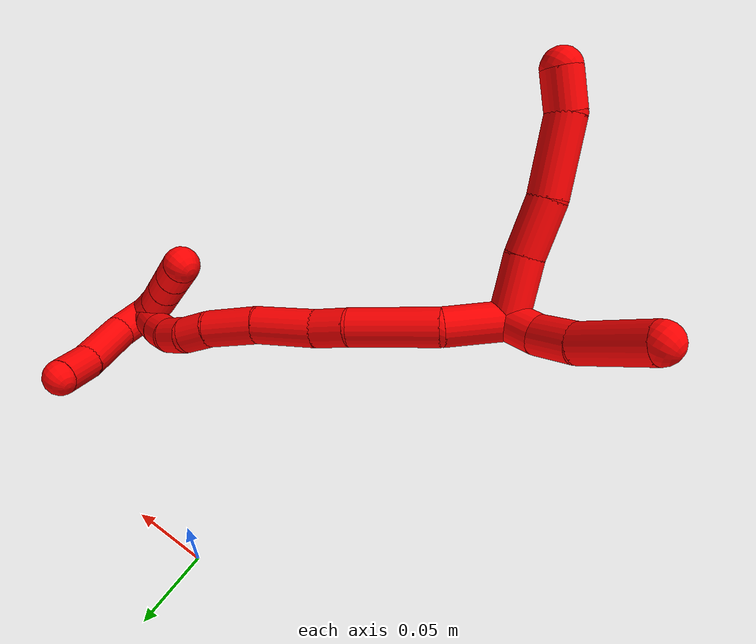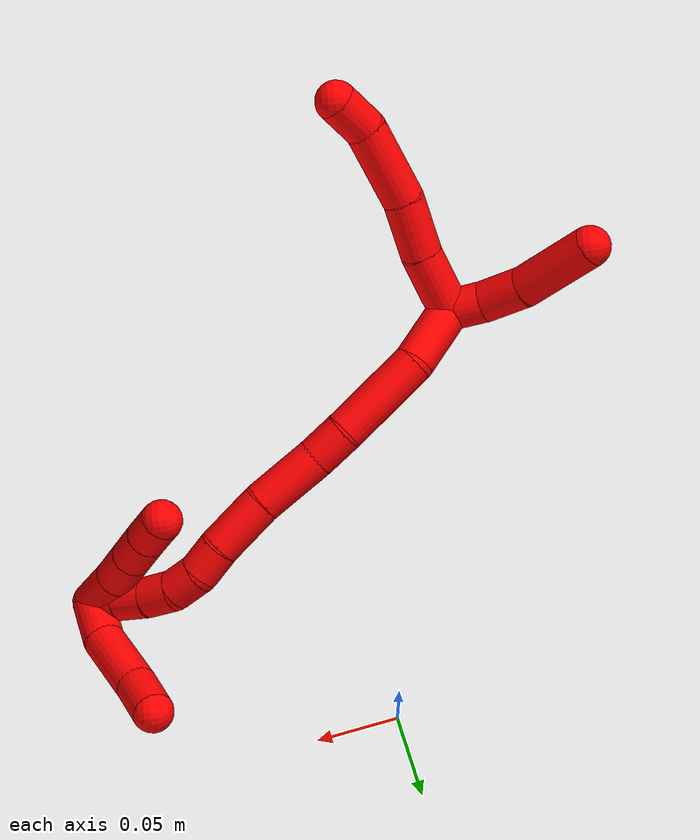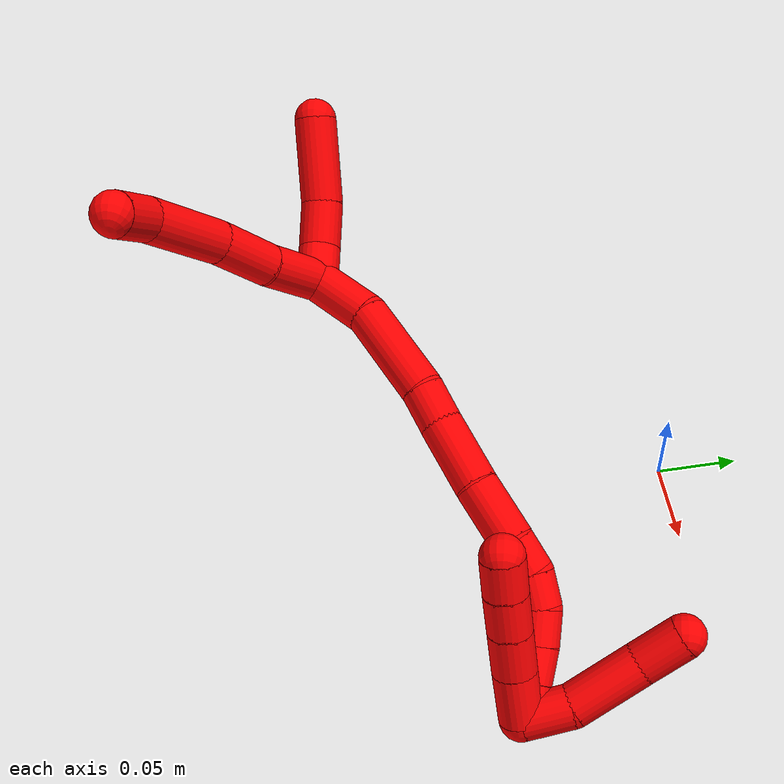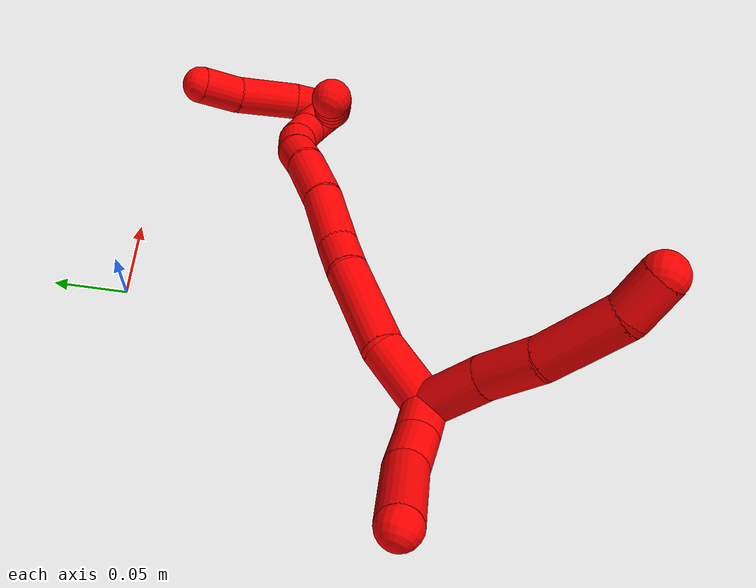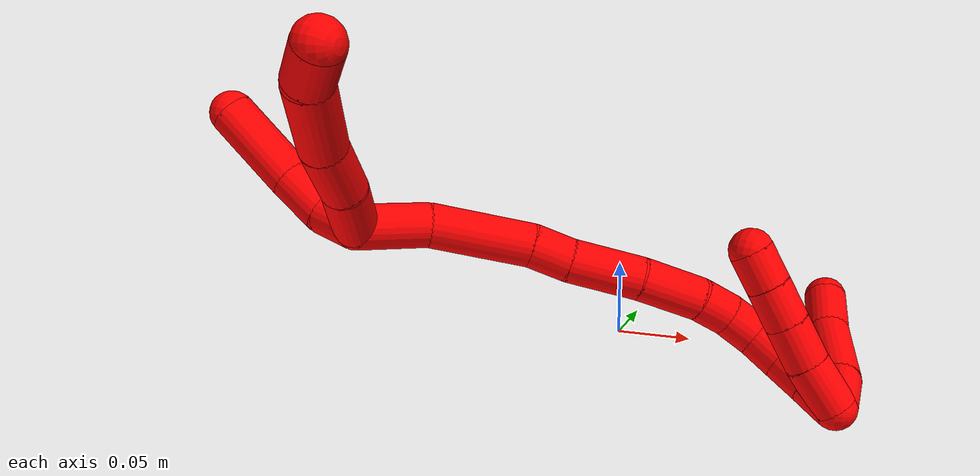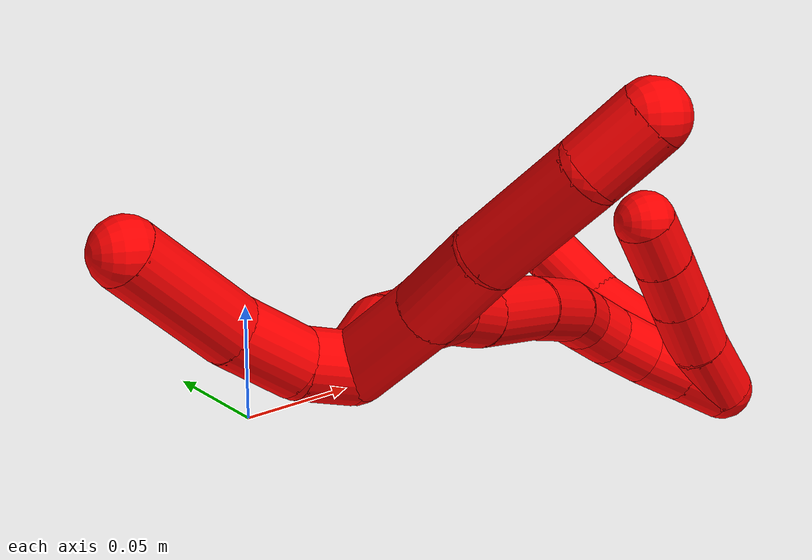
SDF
<sdf version="1.7">
 <world name="default">
  <model name="photoneo_s_sensor">
   <static>1</static>
   <pose>0 0 2 1.57079 1.57079 3.14159</pose>
   <link name="link">
    <inertial><mass>0.1</mass></inertial>
    <sensor name="sensor" type="depth">
     <update_rate>30</update_rate>
     <camera>
      <horizontal_fov>1.22</horizontal_fov>
      <image><width>1920</width><height>1200</height><format>B8G8R8</format></image>
      <clip><near>0.1</near><far>4</far></clip>
      <depth_camera><output>points</output></depth_camera>
     </camera>
     <plugin name="camera_plugin" filename="libgazebo_ros_depth_camera.so">
      <baseline>0.2</baseline>
      <alwaysOn>1</alwaysOn>
      <updateRate>0.0</updateRate>
      <cameraName>camera_ir</cameraName>
      <imageTopicName>/camera/color/image_raw</imageTopicName>
      <cameraInfoTopicName>/camera/color/camera_info</cameraInfoTopicName>
      <depthImageTopicName>/camera/depth/image_raw</depthImageTopicName>
      <depthImageCameraInfoTopicName>/camera/depth/camera_info</depthImageCameraInfoTopicName>
      <pointCloudTopicName>/camera/depth/points</pointCloudTopicName>
      <frameName>fr_optical</frameName>
      <pointCloudCutoff>0.1</pointCloudCutoff>
      <pointCloudCutoffMax>2.0</pointCloudCutoffMax>
      <distortionK1>0</distortionK1>
      <distortionK2>0</distortionK2>
      <distortionK3>0</distortionK3>
      <distortionT1>0</distortionT1>
      <distortionT2>0</distortionT2>
      <CxPrime>0</CxPrime>
      <Cx>0</Cx>
      <Cy>0</Cy>
      <focalLength>0</focalLength>
      <hackBaseline>0</hackBaseline>
     </plugin>
    </sensor>
   </link>
  </model>
  <model name="2">
   <static>0</static>
   <link name="2">
    <collision name="collision-cylinder-e_1_2_8">
     <pose>-0.013141 -0.013284 -0.006412 2.02049 -0.72775 -1.09066</pose>
     <geometry><cylinder><radius>0.0125</radius><length>0.039511</length></cylinder></geometry>
     <surface>
      <friction><ode><mu>1.16</mu><mu2>1.16</mu2><slip1>0</slip1><slip2>0</slip2></ode></friction>
      <contact><ode><kp>1e+06</kp><kd>1</kd><max_vel>0</max_vel><min_depth>0.001</min_depth></ode></contact>
     </surface>
    </collision>
    <visual name="visual-cylinder-e_1_2_8">
     <pose>-0.013141 -0.013284 -0.006412 2.02049 -0.72775 -1.09066</pose>
     <geometry><cylinder><radius>0.0125</radius><length>0.039511</length></cylinder></geometry>
     <material><ambient>1 0 0 1</ambient></material>
    </visual>
    <collision name="collision-cylinder-e_2_8_9">
     <pose>-0.038679 -0.038879 -0.016272 1.84388 -0.770012 -0.981454</pose>
     <geometry><cylinder><radius>0.0125</radius><length>0.035615</length></cylinder></geometry>
     <surface>
      <friction><ode><mu>1.16</mu><mu2>1.16</mu2><slip1>0</slip1><slip2>0</slip2></ode></friction>
      <contact><ode><kp>1e+06</kp><kd>1</kd><max_vel>0</max_vel><min_depth>0.001</min_depth></ode></contact>
     </surface>
    </collision>
    <visual name="visual-cylinder-e_2_8_9">
     <pose>-0.038679 -0.038879 -0.016272 1.84388 -0.770012 -0.981454</pose>
     <geometry><cylinder><radius>0.0125</radius><length>0.035615</length></cylinder></geometry>
     <material><ambient>1 0 0 1</ambient></material>
    </visual>
    <collision name="collision-cylinder-e_3_9_10">
     <pose>-0.066624 -0.068234 -0.028251 2.03488 -0.684269 -1.04596</pose>
     <geometry><cylinder><radius>0.0125</radius><length>0.049194</length></cylinder></geometry>
     <surface>
      <friction><ode><mu>1.16</mu><mu2>1.16</mu2><slip1>0</slip1><slip2>0</slip2></ode></friction>
      <contact><ode><kp>1e+06</kp><kd>1</kd><max_vel>0</max_vel><min_depth>0.001</min_depth></ode></contact>
     </surface>
    </collision>
    <visual name="visual-cylinder-e_3_9_10">
     <pose>-0.066624 -0.068234 -0.028251 2.03488 -0.684269 -1.04596</pose>
     <geometry><cylinder><radius>0.0125</radius><length>0.049194</length></cylinder></geometry>
     <material><ambient>1 0 0 1</ambient></material>
    </visual>
    <collision name="collision-cylinder-e_4_10_6">
     <pose>-0.087228 -0.09455 -0.044083 2.23778 -0.40478 -0.7999</pose>
     <geometry><cylinder><radius>0.0125</radius><length>0.025679</length></cylinder></geometry>
     <surface>
      <friction><ode><mu>1.16</mu><mu2>1.16</mu2><slip1>0</slip1><slip2>0</slip2></ode></friction>
      <contact><ode><kp>1e+06</kp><kd>1</kd><max_vel>0</max_vel><min_depth>0.001</min_depth></ode></contact>
     </surface>
    </collision>
    <visual name="visual-cylinder-e_4_10_6">
     <pose>-0.087228 -0.09455 -0.044083 2.23778 -0.40478 -0.7999</pose>
     <geometry><cylinder><radius>0.0125</radius><length>0.025679</length></cylinder></geometry>
     <material><ambient>1 0 0 1</ambient></material>
    </visual>
    <collision name="collision-cylinder-e_1_2_11">
     <pose>-0.000579 -0.002019 0.010553 0.189001 -0.053813 -0.005102</pose>
     <geometry><cylinder><radius>0.0125</radius><length>0.021521</length></cylinder></geometry>
     <surface>
      <friction><ode><mu>1.16</mu><mu2>1.16</mu2><slip1>0</slip1><slip2>0</slip2></ode></friction>
      <contact><ode><kp>1e+06</kp><kd>1</kd><max_vel>0</max_vel><min_depth>0.001</min_depth></ode></contact>
     </surface>
    </collision>
    <visual name="visual-cylinder-e_1_2_11">
     <pose>-0.000579 -0.002019 0.010553 0.189001 -0.053813 -0.005102</pose>
     <geometry><cylinder><radius>0.0125</radius><length>0.021521</length></cylinder></geometry>
     <material><ambient>1 0 0 1</ambient></material>
    </visual>
    <collision name="collision-cylinder-e_2_11_12">
     <pose>-0.001593 -0.010859 0.033353 0.508199 -0.03108 -0.008072</pose>
     <geometry><cylinder><radius>0.0125</radius><length>0.02805</length></cylinder></geometry>
     <surface>
      <friction><ode><mu>1.16</mu><mu2>1.16</mu2><slip1>0</slip1><slip2>0</slip2></ode></friction>
      <contact><ode><kp>1e+06</kp><kd>1</kd><max_vel>0</max_vel><min_depth>0.001</min_depth></ode></contact>
     </surface>
    </collision>
    <visual name="visual-cylinder-e_2_11_12">
     <pose>-0.001593 -0.010859 0.033353 0.508199 -0.03108 -0.008072</pose>
     <geometry><cylinder><radius>0.0125</radius><length>0.02805</length></cylinder></geometry>
     <material><ambient>1 0 0 1</ambient></material>
    </visual>
    <collision name="collision-cylinder-e_3_12_5">
     <pose>-0.005837 -0.032827 0.065395 0.653145 -0.15161 -0.051437</pose>
     <geometry><cylinder><radius>0.0125</radius><length>0.050429</length></cylinder></geometry>
     <surface>
      <friction><ode><mu>1.16</mu><mu2>1.16</mu2><slip1>0</slip1><slip2>0</slip2></ode></friction>
      <contact><ode><kp>1e+06</kp><kd>1</kd><max_vel>0</max_vel><min_depth>0.001</min_depth></ode></contact>
     </surface>
    </collision>
    <visual name="visual-cylinder-e_3_12_5">
     <pose>-0.005837 -0.032827 0.065395 0.653145 -0.15161 -0.051437</pose>
     <geometry><cylinder><radius>0.0125</radius><length>0.050429</length></cylinder></geometry>
     <material><ambient>1 0 0 1</ambient></material>
    </visual>
    <collision name="collision-cylinder-e_1_2_13">
     <pose>0.016083 -0.000932 -0.012033 3.06431 0.92702 2.98721</pose>
     <geometry><cylinder><radius>0.0125</radius><length>0.040216</length></cylinder></geometry>
     <surface>
      <friction><ode><mu>1.16</mu><mu2>1.16</mu2><slip1>0</slip1><slip2>0</slip2></ode></friction>
      <contact><ode><kp>1e+06</kp><kd>1</kd><max_vel>0</max_vel><min_depth>0.001</min_depth></ode></contact>
     </surface>
    </collision>
    <visual name="visual-cylinder-e_1_2_13">
     <pose>0.016083 -0.000932 -0.012033 3.06431 0.92702 2.98721</pose>
     <geometry><cylinder><radius>0.0125</radius><length>0.040216</length></cylinder></geometry>
     <material><ambient>1 0 0 1</ambient></material>
    </visual>
    <collision name="collision-cylinder-e_2_13_14">
     <pose>0.050139 0.001669 -0.046563 -2.98583 0.668145 -2.69925</pose>
     <geometry><cylinder><radius>0.0125</radius><length>0.05802</length></cylinder></geometry>
     <surface>
      <friction><ode><mu>1.16</mu><mu2>1.16</mu2><slip1>0</slip1><slip2>0</slip2></ode></friction>
      <contact><ode><kp>1e+06</kp><kd>1</kd><max_vel>0</max_vel><min_depth>0.001</min_depth></ode></contact>
     </surface>
    </collision>
    <visual name="visual-cylinder-e_2_13_14">
     <pose>0.050139 0.001669 -0.046563 -2.98583 0.668145 -2.69925</pose>
     <geometry><cylinder><radius>0.0125</radius><length>0.05802</length></cylinder></geometry>
     <material><ambient>1 0 0 1</ambient></material>
    </visual>
    <collision name="collision-cylinder-e_3_14_15">
     <pose>0.074288 0.008477 -0.078365 -2.80317 0.559337 -2.0683</pose>
     <geometry><cylinder><radius>0.0125</radius><length>0.023278</length></cylinder></geometry>
     <surface>
      <friction><ode><mu>1.16</mu><mu2>1.16</mu2><slip1>0</slip1><slip2>0</slip2></ode></friction>
      <contact><ode><kp>1e+06</kp><kd>1</kd><max_vel>0</max_vel><min_depth>0.001</min_depth></ode></contact>
     </surface>
    </collision>
    <visual name="visual-cylinder-e_3_14_15">
     <pose>0.074288 0.008477 -0.078365 -2.80317 0.559337 -2.0683</pose>
     <geometry><cylinder><radius>0.0125</radius><length>0.023278</length></cylinder></geometry>
     <material><ambient>1 0 0 1</ambient></material>
    </visual>
    <collision name="collision-cylinder-e_4_15_16">
     <pose>0.091608 0.014968 -0.104937 -2.9575 0.565448 -2.52627</pose>
     <geometry><cylinder><radius>0.0125</radius><length>0.0416</length></cylinder></geometry>
     <surface>
      <friction><ode><mu>1.16</mu><mu2>1.16</mu2><slip1>0</slip1><slip2>0</slip2></ode></friction>
      <contact><ode><kp>1e+06</kp><kd>1</kd><max_vel>0</max_vel><min_depth>0.001</min_depth></ode></contact>
     </surface>
    </collision>
    <visual name="visual-cylinder-e_4_15_16">
     <pose>0.091608 0.014968 -0.104937 -2.9575 0.565448 -2.52627</pose>
     <geometry><cylinder><radius>0.0125</radius><length>0.0416</length></cylinder></geometry>
     <material><ambient>1 0 0 1</ambient></material>
    </visual>
    <collision name="collision-cylinder-e_5_16_17">
     <pose>0.113522 0.022799 -0.13614 -2.82174 0.632834 -2.22609</pose>
     <geometry><cylinder><radius>0.0125</radius><length>0.036418</length></cylinder></geometry>
     <surface>
      <friction><ode><mu>1.16</mu><mu2>1.16</mu2><slip1>0</slip1><slip2>0</slip2></ode></friction>
      <contact><ode><kp>1e+06</kp><kd>1</kd><max_vel>0</max_vel><min_depth>0.001</min_depth></ode></contact>
     </surface>
    </collision>
    <visual name="visual-cylinder-e_5_16_17">
     <pose>0.113522 0.022799 -0.13614 -2.82174 0.632834 -2.22609</pose>
     <geometry><cylinder><radius>0.0125</radius><length>0.036418</length></cylinder></geometry>
     <material><ambient>1 0 0 1</ambient></material>
    </visual>
    <collision name="collision-cylinder-e_6_17_18">
     <pose>0.130322 0.03162 -0.15716 -2.60577 0.632061 -1.74485</pose>
     <geometry><cylinder><radius>0.0125</radius><length>0.020414</length></cylinder></geometry>
     <surface>
      <friction><ode><mu>1.16</mu><mu2>1.16</mu2><slip1>0</slip1><slip2>0</slip2></ode></friction>
      <contact><ode><kp>1e+06</kp><kd>1</kd><max_vel>0</max_vel><min_depth>0.001</min_depth></ode></contact>
     </surface>
    </collision>
    <visual name="visual-cylinder-e_6_17_18">
     <pose>0.130322 0.03162 -0.15716 -2.60577 0.632061 -1.74485</pose>
     <geometry><cylinder><radius>0.0125</radius><length>0.020414</length></cylinder></geometry>
     <material><ambient>1 0 0 1</ambient></material>
    </visual>
    <collision name="collision-cylinder-e_7_18_19">
     <pose>0.139364 0.040712 -0.172438 -2.60396 0.305707 -1.01977</pose>
     <geometry><cylinder><radius>0.0125</radius><length>0.020016</length></cylinder></geometry>
     <surface>
      <friction><ode><mu>1.16</mu><mu2>1.16</mu2><slip1>0</slip1><slip2>0</slip2></ode></friction>
      <contact><ode><kp>1e+06</kp><kd>1</kd><max_vel>0</max_vel><min_depth>0.001</min_depth></ode></contact>
     </surface>
    </collision>
    <visual name="visual-cylinder-e_7_18_19">
     <pose>0.139364 0.040712 -0.172438 -2.60396 0.305707 -1.01977</pose>
     <geometry><cylinder><radius>0.0125</radius><length>0.020016</length></cylinder></geometry>
     <material><ambient>1 0 0 1</ambient></material>
    </visual>
    <collision name="collision-cylinder-e_8_19_20">
     <pose>0.142185 0.050324 -0.189455 -2.64983 -0.019139 0.076228</pose>
     <geometry><cylinder><radius>0.0125</radius><length>0.020013</length></cylinder></geometry>
     <surface>
      <friction><ode><mu>1.16</mu><mu2>1.16</mu2><slip1>0</slip1><slip2>0</slip2></ode></friction>
      <contact><ode><kp>1e+06</kp><kd>1</kd><max_vel>0</max_vel><min_depth>0.001</min_depth></ode></contact>
     </surface>
    </collision>
    <visual name="visual-cylinder-e_8_19_20">
     <pose>0.142185 0.050324 -0.189455 -2.64983 -0.019139 0.076228</pose>
     <geometry><cylinder><radius>0.0125</radius><length>0.020013</length></cylinder></geometry>
     <material><ambient>1 0 0 1</ambient></material>
    </visual>
    <collision name="collision-cylinder-e_9_20_21">
     <pose>0.14064 0.059196 -0.20728 -2.70996 -0.135662 0.600987</pose>
     <geometry><cylinder><radius>0.0125</radius><length>0.020015</length></cylinder></geometry>
     <surface>
      <friction><ode><mu>1.16</mu><mu2>1.16</mu2><slip1>0</slip1><slip2>0</slip2></ode></friction>
      <contact><ode><kp>1e+06</kp><kd>1</kd><max_vel>0</max_vel><min_depth>0.001</min_depth></ode></contact>
     </surface>
    </collision>
    <visual name="visual-cylinder-e_9_20_21">
     <pose>0.14064 0.059196 -0.20728 -2.70996 -0.135662 0.600987</pose>
     <geometry><cylinder><radius>0.0125</radius><length>0.020015</length></cylinder></geometry>
     <material><ambient>1 0 0 1</ambient></material>
    </visual>
    <collision name="collision-cylinder-e_10_21_1">
     <pose>0.137666 0.067528 -0.225229 -2.70405 -0.162655 0.702786</pose>
     <geometry><cylinder><radius>0.0125</radius><length>0.02001</length></cylinder></geometry>
     <surface>
      <friction><ode><mu>1.16</mu><mu2>1.16</mu2><slip1>0</slip1><slip2>0</slip2></ode></friction>
      <contact><ode><kp>1e+06</kp><kd>1</kd><max_vel>0</max_vel><min_depth>0.001</min_depth></ode></contact>
     </surface>
    </collision>
    <visual name="visual-cylinder-e_10_21_1">
     <pose>0.137666 0.067528 -0.225229 -2.70405 -0.162655 0.702786</pose>
     <geometry><cylinder><radius>0.0125</radius><length>0.02001</length></cylinder></geometry>
     <material><ambient>1 0 0 1</ambient></material>
    </visual>
    <collision name="collision-cylinder-e_1_1_22">
     <pose>0.132906 0.060415 -0.225205 0.899857 -0.214415 -0.10386</pose>
     <geometry><cylinder><radius>0.0125</radius><length>0.02952</length></cylinder></geometry>
     <surface>
      <friction><ode><mu>1.16</mu><mu2>1.16</mu2><slip1>0</slip1><slip2>0</slip2></ode></friction>
      <contact><ode><kp>1e+06</kp><kd>1</kd><max_vel>0</max_vel><min_depth>0.001</min_depth></ode></contact>
     </surface>
    </collision>
    <visual name="visual-cylinder-e_1_1_22">
     <pose>0.132906 0.060415 -0.225205 0.899857 -0.214415 -0.10386</pose>
     <geometry><cylinder><radius>0.0125</radius><length>0.02952</length></cylinder></geometry>
     <material><ambient>1 0 0 1</ambient></material>
    </visual>
    <collision name="collision-cylinder-e_2_22_23">
     <pose>0.127336 0.03857 -0.209487 1.00148 -0.19154 -0.105047</pose>
     <geometry><cylinder><radius>0.0125</radius><length>0.025516</length></cylinder></geometry>
     <surface>
      <friction><ode><mu>1.16</mu><mu2>1.16</mu2><slip1>0</slip1><slip2>0</slip2></ode></friction>
      <contact><ode><kp>1e+06</kp><kd>1</kd><max_vel>0</max_vel><min_depth>0.001</min_depth></ode></contact>
     </surface>
    </collision>
    <visual name="visual-cylinder-e_2_22_23">
     <pose>0.127336 0.03857 -0.209487 1.00148 -0.19154 -0.105047</pose>
     <geometry><cylinder><radius>0.0125</radius><length>0.025516</length></cylinder></geometry>
     <material><ambient>1 0 0 1</ambient></material>
    </visual>
    <collision name="collision-cylinder-e_3_23_24">
     <pose>0.122725 0.01842 -0.196565 0.99951 -0.188976 -0.103394</pose>
     <geometry><cylinder><radius>0.0125</radius><length>0.023238</length></cylinder></geometry>
     <surface>
      <friction><ode><mu>1.16</mu><mu2>1.16</mu2><slip1>0</slip1><slip2>0</slip2></ode></friction>
      <contact><ode><kp>1e+06</kp><kd>1</kd><max_vel>0</max_vel><min_depth>0.001</min_depth></ode></contact>
     </surface>
    </collision>
    <visual name="visual-cylinder-e_3_23_24">
     <pose>0.122725 0.01842 -0.196565 0.99951 -0.188976 -0.103394</pose>
     <geometry><cylinder><radius>0.0125</radius><length>0.023238</length></cylinder></geometry>
     <material><ambient>1 0 0 1</ambient></material>
    </visual>
    <collision name="collision-cylinder-e_4_24_4">
     <pose>0.11871 -0.000124 -0.184508 0.988801 -0.16948 -0.091514</pose>
     <geometry><cylinder><radius>0.0125</radius><length>0.021726</length></cylinder></geometry>
     <surface>
      <friction><ode><mu>1.16</mu><mu2>1.16</mu2><slip1>0</slip1><slip2>0</slip2></ode></friction>
      <contact><ode><kp>1e+06</kp><kd>1</kd><max_vel>0</max_vel><min_depth>0.001</min_depth></ode></contact>
     </surface>
    </collision>
    <visual name="visual-cylinder-e_4_24_4">
     <pose>0.11871 -0.000124 -0.184508 0.988801 -0.16948 -0.091514</pose>
     <geometry><cylinder><radius>0.0125</radius><length>0.021726</length></cylinder></geometry>
     <material><ambient>1 0 0 1</ambient></material>
    </visual>
    <collision name="collision-cylinder-e_1_1_25">
     <pose>0.149377 0.068298 -0.230865 0.801109 1.22836 0.580342</pose>
     <geometry><cylinder><radius>0.0125</radius><length>0.028304</length></cylinder></geometry>
     <surface>
      <friction><ode><mu>1.16</mu><mu2>1.16</mu2><slip1>0</slip1><slip2>0</slip2></ode></friction>
      <contact><ode><kp>1e+06</kp><kd>1</kd><max_vel>0</max_vel><min_depth>0.001</min_depth></ode></contact>
     </surface>
    </collision>
    <visual name="visual-cylinder-e_1_1_25">
     <pose>0.149377 0.068298 -0.230865 0.801109 1.22836 0.580342</pose>
     <geometry><cylinder><radius>0.0125</radius><length>0.028304</length></cylinder></geometry>
     <material><ambient>1 0 0 1</ambient></material>
    </visual>
    <collision name="collision-cylinder-e_2_25_26">
     <pose>0.18004 0.056723 -0.217285 0.671443 0.922862 0.343578</pose>
     <geometry><cylinder><radius>0.0125</radius><length>0.043477</length></cylinder></geometry>
     <surface>
      <friction><ode><mu>1.16</mu><mu2>1.16</mu2><slip1>0</slip1><slip2>0</slip2></ode></friction>
      <contact><ode><kp>1e+06</kp><kd>1</kd><max_vel>0</max_vel><min_depth>0.001</min_depth></ode></contact>
     </surface>
    </collision>
    <visual name="visual-cylinder-e_2_25_26">
     <pose>0.18004 0.056723 -0.217285 0.671443 0.922862 0.343578</pose>
     <geometry><cylinder><radius>0.0125</radius><length>0.043477</length></cylinder></geometry>
     <material><ambient>1 0 0 1</ambient></material>
    </visual>
    <collision name="collision-cylinder-e_3_26_3">
     <pose>0.208097 0.041279 -0.201443 0.917782 0.863413 0.447597</pose>
     <geometry><cylinder><radius>0.0125</radius><length>0.028219</length></cylinder></geometry>
     <surface>
      <friction><ode><mu>1.16</mu><mu2>1.16</mu2><slip1>0</slip1><slip2>0</slip2></ode></friction>
      <contact><ode><kp>1e+06</kp><kd>1</kd><max_vel>0</max_vel><min_depth>0.001</min_depth></ode></contact>
     </surface>
    </collision>
    <visual name="visual-cylinder-e_3_26_3">
     <pose>0.208097 0.041279 -0.201443 0.917782 0.863413 0.447597</pose>
     <geometry><cylinder><radius>0.0125</radius><length>0.028219</length></cylinder></geometry>
     <material><ambient>1 0 0 1</ambient></material>
    </visual>
    <collision name="collision-sphere-3">
     <pose>0.218821 0.033996 -0.195872 0 -0 0</pose>
     <geometry><sphere><radius>0.0125</radius></sphere></geometry>
     <surface>
      <friction><ode><mu>1.16</mu><mu2>1.16</mu2><slip1>0</slip1><slip2>0</slip2></ode></friction>
      <contact><ode><kp>1e+06</kp><kd>1</kd><max_vel>0</max_vel><min_depth>0.001</min_depth></ode></contact>
     </surface>
    </collision>
    <visual name="visual-sphere-3">
     <pose>0.218821 0.033996 -0.195872 0 -0 0</pose>
     <geometry><sphere><radius>0.0125</radius></sphere></geometry>
     <material><ambient>1 0 0 1</ambient></material>
    </visual>
    <collision name="collision-sphere-26">
     <pose>0.197373 0.048561 -0.207013 0 -0 0</pose>
     <geometry><sphere><radius>0.0125</radius></sphere></geometry>
     <surface>
      <friction><ode><mu>1.16</mu><mu2>1.16</mu2><slip1>0</slip1><slip2>0</slip2></ode></friction>
      <contact><ode><kp>1e+06</kp><kd>1</kd><max_vel>0</max_vel><min_depth>0.001</min_depth></ode></contact>
     </surface>
    </collision>
    <visual name="visual-sphere-26">
     <pose>0.197373 0.048561 -0.207013 0 -0 0</pose>
     <geometry><sphere><radius>0.0125</radius></sphere></geometry>
     <material><ambient>1 0 0 1</ambient></material>
    </visual>
    <collision name="collision-sphere-25">
     <pose>0.162707 0.064886 -0.227558 0 -0 0</pose>
     <geometry><sphere><radius>0.0125</radius></sphere></geometry>
     <surface>
      <friction><ode><mu>1.16</mu><mu2>1.16</mu2><slip1>0</slip1><slip2>0</slip2></ode></friction>
      <contact><ode><kp>1e+06</kp><kd>1</kd><max_vel>0</max_vel><min_depth>0.001</min_depth></ode></contact>
     </surface>
    </collision>
    <visual name="visual-sphere-25">
     <pose>0.162707 0.064886 -0.227558 0 -0 0</pose>
     <geometry><sphere><radius>0.0125</radius></sphere></geometry>
     <material><ambient>1 0 0 1</ambient></material>
    </visual>
    <collision name="collision-sphere-4">
     <pose>0.116878 -0.009068 -0.178623 0 -0 0</pose>
     <geometry><sphere><radius>0.0125</radius></sphere></geometry>
     <surface>
      <friction><ode><mu>1.16</mu><mu2>1.16</mu2><slip1>0</slip1><slip2>0</slip2></ode></friction>
      <contact><ode><kp>1e+06</kp><kd>1</kd><max_vel>0</max_vel><min_depth>0.001</min_depth></ode></contact>
     </surface>
    </collision>
    <visual name="visual-sphere-4">
     <pose>0.116878 -0.009068 -0.178623 0 -0 0</pose>
     <geometry><sphere><radius>0.0125</radius></sphere></geometry>
     <material><ambient>1 0 0 1</ambient></material>
    </visual>
    <collision name="collision-sphere-24">
     <pose>0.120542 0.008821 -0.190394 0 -0 0</pose>
     <geometry><sphere><radius>0.0125</radius></sphere></geometry>
     <surface>
      <friction><ode><mu>1.16</mu><mu2>1.16</mu2><slip1>0</slip1><slip2>0</slip2></ode></friction>
      <contact><ode><kp>1e+06</kp><kd>1</kd><max_vel>0</max_vel><min_depth>0.001</min_depth></ode></contact>
     </surface>
    </collision>
    <visual name="visual-sphere-24">
     <pose>0.120542 0.008821 -0.190394 0 -0 0</pose>
     <geometry><sphere><radius>0.0125</radius></sphere></geometry>
     <material><ambient>1 0 0 1</ambient></material>
    </visual>
    <collision name="collision-sphere-23">
     <pose>0.124907 0.02802 -0.202735 0 -0 0</pose>
     <geometry><sphere><radius>0.0125</radius></sphere></geometry>
     <surface>
      <friction><ode><mu>1.16</mu><mu2>1.16</mu2><slip1>0</slip1><slip2>0</slip2></ode></friction>
      <contact><ode><kp>1e+06</kp><kd>1</kd><max_vel>0</max_vel><min_depth>0.001</min_depth></ode></contact>
     </surface>
    </collision>
    <visual name="visual-sphere-23">
     <pose>0.124907 0.02802 -0.202735 0 -0 0</pose>
     <geometry><sphere><radius>0.0125</radius></sphere></geometry>
     <material><ambient>1 0 0 1</ambient></material>
    </visual>
    <collision name="collision-sphere-22">
     <pose>0.129765 0.049119 -0.216238 0 -0 0</pose>
     <geometry><sphere><radius>0.0125</radius></sphere></geometry>
     <surface>
      <friction><ode><mu>1.16</mu><mu2>1.16</mu2><slip1>0</slip1><slip2>0</slip2></ode></friction>
      <contact><ode><kp>1e+06</kp><kd>1</kd><max_vel>0</max_vel><min_depth>0.001</min_depth></ode></contact>
     </surface>
    </collision>
    <visual name="visual-sphere-22">
     <pose>0.129765 0.049119 -0.216238 0 -0 0</pose>
     <geometry><sphere><radius>0.0125</radius></sphere></geometry>
     <material><ambient>1 0 0 1</ambient></material>
    </visual>
    <collision name="collision-sphere-1">
     <pose>0.136046 0.071711 -0.234171 0 -0 0</pose>
     <geometry><sphere><radius>0.0125</radius></sphere></geometry>
     <surface>
      <friction><ode><mu>1.16</mu><mu2>1.16</mu2><slip1>0</slip1><slip2>0</slip2></ode></friction>
      <contact><ode><kp>1e+06</kp><kd>1</kd><max_vel>0</max_vel><min_depth>0.001</min_depth></ode></contact>
     </surface>
    </collision>
    <visual name="visual-sphere-1">
     <pose>0.136046 0.071711 -0.234171 0 -0 0</pose>
     <geometry><sphere><radius>0.0125</radius></sphere></geometry>
     <material><ambient>1 0 0 1</ambient></material>
    </visual>
    <collision name="collision-sphere-21">
     <pose>0.139286 0.063344 -0.216286 0 -0 0</pose>
     <geometry><sphere><radius>0.0125</radius></sphere></geometry>
     <surface>
      <friction><ode><mu>1.16</mu><mu2>1.16</mu2><slip1>0</slip1><slip2>0</slip2></ode></friction>
      <contact><ode><kp>1e+06</kp><kd>1</kd><max_vel>0</max_vel><min_depth>0.001</min_depth></ode></contact>
     </surface>
    </collision>
    <visual name="visual-sphere-21">
     <pose>0.139286 0.063344 -0.216286 0 -0 0</pose>
     <geometry><sphere><radius>0.0125</radius></sphere></geometry>
     <material><ambient>1 0 0 1</ambient></material>
    </visual>
    <collision name="collision-sphere-11">
     <pose>-0.001158 -0.004037 0.021107 0 -0 0</pose>
     <geometry><sphere><radius>0.0125</radius></sphere></geometry>
     <surface>
      <friction><ode><mu>1.16</mu><mu2>1.16</mu2><slip1>0</slip1><slip2>0</slip2></ode></friction>
      <contact><ode><kp>1e+06</kp><kd>1</kd><max_vel>0</max_vel><min_depth>0.001</min_depth></ode></contact>
     </surface>
    </collision>
    <visual name="visual-sphere-11">
     <pose>-0.001158 -0.004037 0.021107 0 -0 0</pose>
     <geometry><sphere><radius>0.0125</radius></sphere></geometry>
     <material><ambient>1 0 0 1</ambient></material>
    </visual>
    <collision name="collision-sphere-6">
     <pose>-0.092285 -0.103823 -0.051384 0 -0 0</pose>
     <geometry><sphere><radius>0.0125</radius></sphere></geometry>
     <surface>
      <friction><ode><mu>1.16</mu><mu2>1.16</mu2><slip1>0</slip1><slip2>0</slip2></ode></friction>
      <contact><ode><kp>1e+06</kp><kd>1</kd><max_vel>0</max_vel><min_depth>0.001</min_depth></ode></contact>
     </surface>
    </collision>
    <visual name="visual-sphere-6">
     <pose>-0.092285 -0.103823 -0.051384 0 -0 0</pose>
     <geometry><sphere><radius>0.0125</radius></sphere></geometry>
     <material><ambient>1 0 0 1</ambient></material>
    </visual>
    <collision name="collision-sphere-10">
     <pose>-0.082172 -0.085277 -0.036782 0 -0 0</pose>
     <geometry><sphere><radius>0.0125</radius></sphere></geometry>
     <surface>
      <friction><ode><mu>1.16</mu><mu2>1.16</mu2><slip1>0</slip1><slip2>0</slip2></ode></friction>
      <contact><ode><kp>1e+06</kp><kd>1</kd><max_vel>0</max_vel><min_depth>0.001</min_depth></ode></contact>
     </surface>
    </collision>
    <visual name="visual-sphere-10">
     <pose>-0.082172 -0.085277 -0.036782 0 -0 0</pose>
     <geometry><sphere><radius>0.0125</radius></sphere></geometry>
     <material><ambient>1 0 0 1</ambient></material>
    </visual>
    <collision name="collision-sphere-9">
     <pose>-0.051076 -0.05119 -0.01972 0 -0 0</pose>
     <geometry><sphere><radius>0.0125</radius></sphere></geometry>
     <surface>
      <friction><ode><mu>1.16</mu><mu2>1.16</mu2><slip1>0</slip1><slip2>0</slip2></ode></friction>
      <contact><ode><kp>1e+06</kp><kd>1</kd><max_vel>0</max_vel><min_depth>0.001</min_depth></ode></contact>
     </surface>
    </collision>
    <visual name="visual-sphere-9">
     <pose>-0.051076 -0.05119 -0.01972 0 -0 0</pose>
     <geometry><sphere><radius>0.0125</radius></sphere></geometry>
     <material><ambient>1 0 0 1</ambient></material>
    </visual>
    <collision name="collision-sphere-2">
     <geometry><sphere><radius>0.0125</radius></sphere></geometry>
     <surface>
      <friction><ode><mu>1.16</mu><mu2>1.16</mu2><slip1>0</slip1><slip2>0</slip2></ode></friction>
      <contact><ode><kp>1e+06</kp><kd>1</kd><max_vel>0</max_vel><min_depth>0.001</min_depth></ode></contact>
     </surface>
    </collision>
    <visual name="visual-sphere-2">
     <geometry><sphere><radius>0.0125</radius></sphere></geometry>
     <material><ambient>1 0 0 1</ambient></material>
    </visual>
    <collision name="collision-sphere-19">
     <pose>0.142376 0.0456 -0.180636 0 -0 0</pose>
     <geometry><sphere><radius>0.0125</radius></sphere></geometry>
     <surface>
      <friction><ode><mu>1.16</mu><mu2>1.16</mu2><slip1>0</slip1><slip2>0</slip2></ode></friction>
      <contact><ode><kp>1e+06</kp><kd>1</kd><max_vel>0</max_vel><min_depth>0.001</min_depth></ode></contact>
     </surface>
    </collision>
    <visual name="visual-sphere-19">
     <pose>0.142376 0.0456 -0.180636 0 -0 0</pose>
     <geometry><sphere><radius>0.0125</radius></sphere></geometry>
     <material><ambient>1 0 0 1</ambient></material>
    </visual>
    <collision name="collision-sphere-8">
     <pose>-0.026283 -0.026569 -0.012824 0 -0 0</pose>
     <geometry><sphere><radius>0.0125</radius></sphere></geometry>
     <surface>
      <friction><ode><mu>1.16</mu><mu2>1.16</mu2><slip1>0</slip1><slip2>0</slip2></ode></friction>
      <contact><ode><kp>1e+06</kp><kd>1</kd><max_vel>0</max_vel><min_depth>0.001</min_depth></ode></contact>
     </surface>
    </collision>
    <visual name="visual-sphere-8">
     <pose>-0.026283 -0.026569 -0.012824 0 -0 0</pose>
     <geometry><sphere><radius>0.0125</radius></sphere></geometry>
     <material><ambient>1 0 0 1</ambient></material>
    </visual>
    <collision name="collision-sphere-12">
     <pose>-0.002029 -0.01768 0.0456 0 -0 0</pose>
     <geometry><sphere><radius>0.0125</radius></sphere></geometry>
     <surface>
      <friction><ode><mu>1.16</mu><mu2>1.16</mu2><slip1>0</slip1><slip2>0</slip2></ode></friction>
      <contact><ode><kp>1e+06</kp><kd>1</kd><max_vel>0</max_vel><min_depth>0.001</min_depth></ode></contact>
     </surface>
    </collision>
    <visual name="visual-sphere-12">
     <pose>-0.002029 -0.01768 0.0456 0 -0 0</pose>
     <geometry><sphere><radius>0.0125</radius></sphere></geometry>
     <material><ambient>1 0 0 1</ambient></material>
    </visual>
    <collision name="collision-sphere-5">
     <pose>-0.009646 -0.047974 0.085191 0 -0 0</pose>
     <geometry><sphere><radius>0.0125</radius></sphere></geometry>
     <surface>
      <friction><ode><mu>1.16</mu><mu2>1.16</mu2><slip1>0</slip1><slip2>0</slip2></ode></friction>
      <contact><ode><kp>1e+06</kp><kd>1</kd><max_vel>0</max_vel><min_depth>0.001</min_depth></ode></contact>
     </surface>
    </collision>
    <visual name="visual-sphere-5">
     <pose>-0.009646 -0.047974 0.085191 0 -0 0</pose>
     <geometry><sphere><radius>0.0125</radius></sphere></geometry>
     <material><ambient>1 0 0 1</ambient></material>
    </visual>
    <collision name="collision-sphere-13">
     <pose>0.032166 -0.001864 -0.024066 0 -0 0</pose>
     <geometry><sphere><radius>0.0125</radius></sphere></geometry>
     <surface>
      <friction><ode><mu>1.16</mu><mu2>1.16</mu2><slip1>0</slip1><slip2>0</slip2></ode></friction>
      <contact><ode><kp>1e+06</kp><kd>1</kd><max_vel>0</max_vel><min_depth>0.001</min_depth></ode></contact>
     </surface>
    </collision>
    <visual name="visual-sphere-13">
     <pose>0.032166 -0.001864 -0.024066 0 -0 0</pose>
     <geometry><sphere><radius>0.0125</radius></sphere></geometry>
     <material><ambient>1 0 0 1</ambient></material>
    </visual>
    <collision name="collision-sphere-14">
     <pose>0.068112 0.005202 -0.06906 0 -0 0</pose>
     <geometry><sphere><radius>0.0125</radius></sphere></geometry>
     <surface>
      <friction><ode><mu>1.16</mu><mu2>1.16</mu2><slip1>0</slip1><slip2>0</slip2></ode></friction>
      <contact><ode><kp>1e+06</kp><kd>1</kd><max_vel>0</max_vel><min_depth>0.001</min_depth></ode></contact>
     </surface>
    </collision>
    <visual name="visual-sphere-14">
     <pose>0.068112 0.005202 -0.06906 0 -0 0</pose>
     <geometry><sphere><radius>0.0125</radius></sphere></geometry>
     <material><ambient>1 0 0 1</ambient></material>
    </visual>
    <collision name="collision-sphere-15">
     <pose>0.080464 0.011753 -0.087671 0 -0 0</pose>
     <geometry><sphere><radius>0.0125</radius></sphere></geometry>
     <surface>
      <friction><ode><mu>1.16</mu><mu2>1.16</mu2><slip1>0</slip1><slip2>0</slip2></ode></friction>
      <contact><ode><kp>1e+06</kp><kd>1</kd><max_vel>0</max_vel><min_depth>0.001</min_depth></ode></contact>
     </surface>
    </collision>
    <visual name="visual-sphere-15">
     <pose>0.080464 0.011753 -0.087671 0 -0 0</pose>
     <geometry><sphere><radius>0.0125</radius></sphere></geometry>
     <material><ambient>1 0 0 1</ambient></material>
    </visual>
    <collision name="collision-sphere-16">
     <pose>0.102753 0.018183 -0.122202 0 -0 0</pose>
     <geometry><sphere><radius>0.0125</radius></sphere></geometry>
     <surface>
      <friction><ode><mu>1.16</mu><mu2>1.16</mu2><slip1>0</slip1><slip2>0</slip2></ode></friction>
      <contact><ode><kp>1e+06</kp><kd>1</kd><max_vel>0</max_vel><min_depth>0.001</min_depth></ode></contact>
     </surface>
    </collision>
    <visual name="visual-sphere-16">
     <pose>0.102753 0.018183 -0.122202 0 -0 0</pose>
     <geometry><sphere><radius>0.0125</radius></sphere></geometry>
     <material><ambient>1 0 0 1</ambient></material>
    </visual>
    <collision name="collision-sphere-17">
     <pose>0.124291 0.027416 -0.150079 0 -0 0</pose>
     <geometry><sphere><radius>0.0125</radius></sphere></geometry>
     <surface>
      <friction><ode><mu>1.16</mu><mu2>1.16</mu2><slip1>0</slip1><slip2>0</slip2></ode></friction>
      <contact><ode><kp>1e+06</kp><kd>1</kd><max_vel>0</max_vel><min_depth>0.001</min_depth></ode></contact>
     </surface>
    </collision>
    <visual name="visual-sphere-17">
     <pose>0.124291 0.027416 -0.150079 0 -0 0</pose>
     <geometry><sphere><radius>0.0125</radius></sphere></geometry>
     <material><ambient>1 0 0 1</ambient></material>
    </visual>
    <collision name="collision-sphere-18">
     <pose>0.136352 0.035825 -0.164241 0 -0 0</pose>
     <geometry><sphere><radius>0.0125</radius></sphere></geometry>
     <surface>
      <friction><ode><mu>1.16</mu><mu2>1.16</mu2><slip1>0</slip1><slip2>0</slip2></ode></friction>
      <contact><ode><kp>1e+06</kp><kd>1</kd><max_vel>0</max_vel><min_depth>0.001</min_depth></ode></contact>
     </surface>
    </collision>
    <visual name="visual-sphere-18">
     <pose>0.136352 0.035825 -0.164241 0 -0 0</pose>
     <geometry><sphere><radius>0.0125</radius></sphere></geometry>
     <material><ambient>1 0 0 1</ambient></material>
    </visual>
    <collision name="collision-sphere-20">
     <pose>0.141993 0.055048 -0.198274 0 -0 0</pose>
     <geometry><sphere><radius>0.0125</radius></sphere></geometry>
     <surface>
      <friction><ode><mu>1.16</mu><mu2>1.16</mu2><slip1>0</slip1><slip2>0</slip2></ode></friction>
      <contact><ode><kp>1e+06</kp><kd>1</kd><max_vel>0</max_vel><min_depth>0.001</min_depth></ode></contact>
     </surface>
    </collision>
    <visual name="visual-sphere-20">
     <pose>0.141993 0.055048 -0.198274 0 -0 0</pose>
     <geometry><sphere><radius>0.0125</radius></sphere></geometry>
     <material><ambient>1 0 0 1</ambient></material>
    </visual>
    <inertial>
     <pose>0.066481 0.007697 -0.099426 0 -0 0</pose>
     <mass>0.75</mass>
     <inertia><ixx>-0</ixx><ixy>0</ixy><ixz>0</ixz><iyy>2.7e-05</iyy><iyz>0</iyz><izz>6e-06</izz></inertia>
    </inertial>
   </link>
   <pose>-0.09121 -0.200293 0.112902 -1.47566 0.058336 1.36101</pose>
  </model>
 </world>
</sdf>
